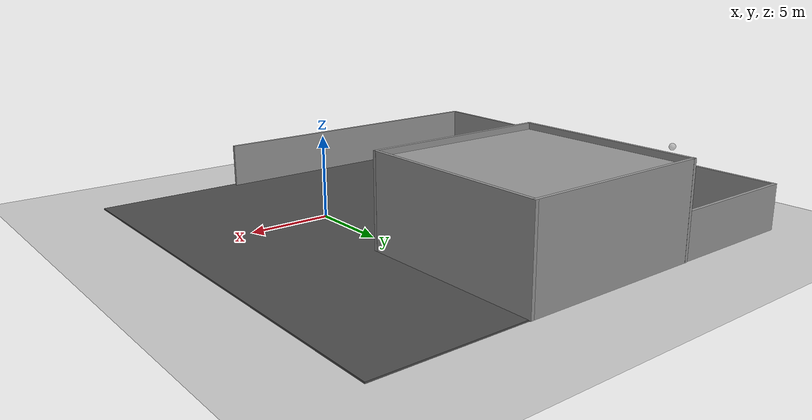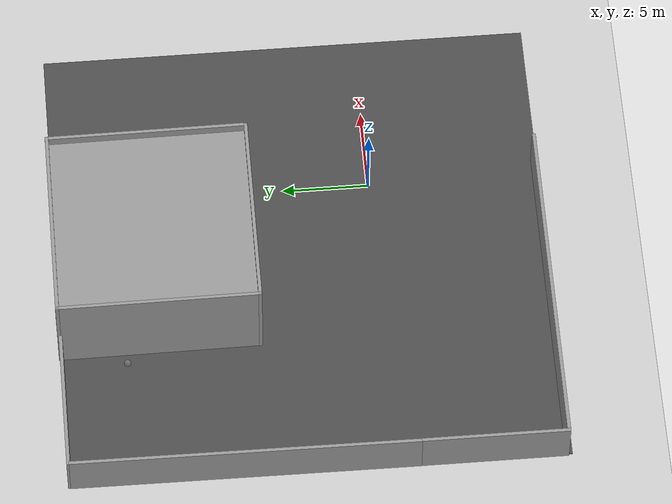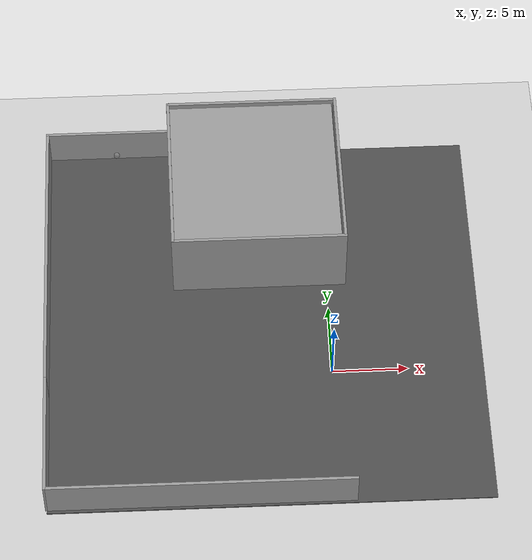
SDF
<sdf version="1.6">
 <world name="default">
  <light name="sun" type="directional">
   <pose>0 0 10 0 -0 0</pose>
   <diffuse>0.8 0.8 0.8 1</diffuse>
   <specular>0.2 0.2 0.2 1</specular>
   <attenuation>
    <range>1000</range>
    <constant>0.9</constant>
    <linear>0.01</linear>
    <quadratic>0.001</quadratic>
   </attenuation>
   <direction>-0.5 0.1 -0.9</direction>
  </light>
  <model name="ground_plane">
   <static>1</static>
   <link name="link">
    <collision name="collision">
     <geometry><plane><normal>0 0 1</normal><size>100 100</size></plane></geometry>
     <surface>
      <contact><collide_bitmask>65535</collide_bitmask></contact>
      <friction><ode><mu>100</mu><mu2>50</mu2></ode></friction>
     </surface>
    </collision>
    <visual name="visual">
     <cast_shadows>0</cast_shadows>
     <geometry><plane><normal>0 0 1</normal><size>100 100</size></plane></geometry>
     <material>
      <script><uri>file://media/materials/scripts/gazebo.material</uri><name>Gazebo/Grey</name></script>
     </material>
    </visual>
   </link>
  </model>
  <gravity>0 0 -9.8</gravity>
  <magnetic_field>6e-06 2.3e-05 -4.2e-05</magnetic_field>
  <atmosphere type="adiabatic"/>
  <physics name="default_physics" default="0" type="ode">
   <max_step_size>0.001</max_step_size>
   <real_time_factor>1</real_time_factor>
   <real_time_update_rate>1000</real_time_update_rate>
  </physics>
  <scene><ambient>0.4 0.4 0.4 1</ambient><background>0.7 0.7 0.7 1</background><shadows>1</shadows></scene>
  <audio><device>default</device></audio>
  <spherical_coordinates>
   <surface_model>EARTH_WGS84</surface_model>
   <latitude_deg>0</latitude_deg>
   <longitude_deg>0</longitude_deg>
   <elevation>0</elevation>
   <heading_deg>0</heading_deg>
  </spherical_coordinates>
  <model name="asphalt_plane">
   <static>1</static>
   <link name="link">
    <collision name="collision"><geometry><box><size>28.8906 28.485 0.1</size></box></geometry></collision>
    <visual name="visual">
     <cast_shadows>0</cast_shadows>
     <geometry><box><size>28.8906 28.485 0.1</size></box></geometry>
     <material>
      <script>
       <uri>model://asphalt_plane/materials/scripts</uri>
       <uri>model://asphalt_plane/materials/textures</uri>
       <name>vrc/asphalt</name>
      </script>
     </material>
    </visual>
   </link>
   <pose>-4.40051 4.22638 0 0 -0 0</pose>
  </model>
  <model name="office_simple">
   <link name="link">
    <pose>-1.95575 1.34148 3.39662 0 -0 0</pose>
    <inertial>
     <inertia><ixx>nan</ixx><ixy>0</ixy><ixz>0</ixz><iyy>nan</iyy><iyz>0</iyz><izz>nan</izz></inertia>
     <mass>0</mass>
    </inertial>
    <visual name="visual">
     <cast_shadows>0</cast_shadows>
     <geometry><box><size>11.6509 0.2 5.63018</size></box></geometry>
     <material>
      <script>
       <uri>model://grey_wall/materials/scripts</uri>
       <uri>model://grey_wall/materials/textures</uri>
       <name>vrc/grey_wall</name>
      </script>
     </material>
    </visual>
    <collision name="collision">
     <geometry><box><size>11.6509 0.2 5.63018</size></box></geometry>
     <surface>
      <friction>
       <ode><mu>1</mu><mu2>1</mu2><fdir1>0 0 0</fdir1><slip1>0</slip1><slip2>0</slip2></ode>
       <torsional>
        <coefficient>1</coefficient>
        <patch_radius>0</patch_radius>
        <surface_radius>0</surface_radius>
        <use_patch_radius>1</use_patch_radius>
        <ode><slip>0</slip></ode>
       </torsional>
      </friction>
      <bounce><restitution_coefficient>0</restitution_coefficient><threshold>1e+06</threshold></bounce>
      <contact>
       <collide_without_contact>0</collide_without_contact>
       <collide_without_contact_bitmask>1</collide_without_contact_bitmask>
       <collide_bitmask>1</collide_bitmask>
       <ode>
        <soft_cfm>0</soft_cfm>
        <soft_erp>0.2</soft_erp>
        <kp>1e+13</kp>
        <kd>1</kd>
        <max_vel>0.01</max_vel>
        <min_depth>0</min_depth>
       </ode>
       <bullet>
        <split_impulse>1</split_impulse>
        <split_impulse_penetration_threshold>-0.01</split_impulse_penetration_threshold>
        <soft_cfm>0</soft_cfm>
        <soft_erp>0.2</soft_erp>
        <kp>1e+13</kp>
        <kd>1</kd>
       </bullet>
      </contact>
     </surface>
    </collision>
   </link>
   <link name="link_clone_0">
    <pose>3.71982 7.10283 3.39662 0 0 -1.56276</pose>
    <inertial>
     <inertia><ixx>nan</ixx><ixy>0</ixy><ixz>0</ixz><iyy>nan</iyy><iyz>0</iyz><izz>nan</izz></inertia>
     <mass>0</mass>
    </inertial>
    <visual name="visual">
     <cast_shadows>0</cast_shadows>
     <geometry><box><size>11.6509 0.2 5.63018</size></box></geometry>
     <material>
      <script>
       <uri>model://grey_wall/materials/scripts</uri>
       <uri>model://grey_wall/materials/textures</uri>
       <name>vrc/grey_wall</name>
      </script>
      <shader type="pixel"/>
     </material>
    </visual>
    <collision name="collision">
     <geometry><box><size>11.6509 0.2 5.63018</size></box></geometry>
     <surface>
      <friction>
       <ode><mu>1</mu><mu2>1</mu2><fdir1>0 0 0</fdir1><slip1>0</slip1><slip2>0</slip2></ode>
       <torsional>
        <coefficient>1</coefficient>
        <patch_radius>0</patch_radius>
        <surface_radius>0</surface_radius>
        <use_patch_radius>1</use_patch_radius>
        <ode><slip>0</slip></ode>
       </torsional>
      </friction>
      <bounce><restitution_coefficient>0</restitution_coefficient><threshold>1e+06</threshold></bounce>
      <contact>
       <collide_without_contact>0</collide_without_contact>
       <collide_without_contact_bitmask>1</collide_without_contact_bitmask>
       <collide_bitmask>1</collide_bitmask>
       <ode>
        <soft_cfm>0</soft_cfm>
        <soft_erp>0.2</soft_erp>
        <kp>1e+13</kp>
        <kd>1</kd>
        <max_vel>0.01</max_vel>
        <min_depth>0</min_depth>
       </ode>
       <bullet>
        <split_impulse>1</split_impulse>
        <split_impulse_penetration_threshold>-0.01</split_impulse_penetration_threshold>
        <soft_cfm>0</soft_cfm>
        <soft_erp>0.2</soft_erp>
        <kp>1e+13</kp>
        <kd>1</kd>
       </bullet>
      </contact>
     </surface>
    </collision>
   </link>
   <link name="link_clone_0_clone">
    <pose>-7.7194 7.10341 3.39662 0 0 -1.56276</pose>
    <inertial>
     <inertia><ixx>nan</ixx><ixy>0</ixy><ixz>0</ixz><iyy>nan</iyy><iyz>0</iyz><izz>nan</izz></inertia>
     <mass>0</mass>
    </inertial>
    <visual name="visual">
     <cast_shadows>0</cast_shadows>
     <geometry><box><size>11.6509 0.2 5.63018</size></box></geometry>
     <material>
      <script>
       <uri>model://grey_wall/materials/scripts</uri>
       <uri>model://grey_wall/materials/textures</uri>
       <name>vrc/grey_wall</name>
      </script>
      <shader type="pixel"/>
     </material>
    </visual>
    <collision name="collision">
     <geometry><box><size>11.6509 0.2 5.63018</size></box></geometry>
     <surface>
      <friction>
       <ode><mu>1</mu><mu2>1</mu2><fdir1>0 0 0</fdir1><slip1>0</slip1><slip2>0</slip2></ode>
       <torsional>
        <coefficient>1</coefficient>
        <patch_radius>0</patch_radius>
        <surface_radius>0</surface_radius>
        <use_patch_radius>1</use_patch_radius>
        <ode><slip>0</slip></ode>
       </torsional>
      </friction>
      <bounce><restitution_coefficient>0</restitution_coefficient><threshold>1e+06</threshold></bounce>
      <contact>
       <collide_without_contact>0</collide_without_contact>
       <collide_without_contact_bitmask>1</collide_without_contact_bitmask>
       <collide_bitmask>1</collide_bitmask>
       <ode>
        <soft_cfm>0</soft_cfm>
        <soft_erp>0.2</soft_erp>
        <kp>1e+13</kp>
        <kd>1</kd>
        <max_vel>0.01</max_vel>
        <min_depth>0</min_depth>
       </ode>
       <bullet>
        <split_impulse>1</split_impulse>
        <split_impulse_penetration_threshold>-0.01</split_impulse_penetration_threshold>
        <soft_cfm>0</soft_cfm>
        <soft_erp>0.2</soft_erp>
        <kp>1e+13</kp>
        <kd>1</kd>
       </bullet>
      </contact>
     </surface>
    </collision>
   </link>
   <link name="link_clone_0_clone_0">
    <pose>-2.09862 7.04327 5.73647 1.5726 -0 -1.56276</pose>
    <inertial>
     <inertia><ixx>nan</ixx><ixy>0</ixy><ixz>0</ixz><iyy>nan</iyy><iyz>0</iyz><izz>nan</izz></inertia>
     <mass>0</mass>
    </inertial>
    <visual name="visual">
     <cast_shadows>0</cast_shadows>
     <geometry><box><size>11.4489 0.212066 11.2025</size></box></geometry>
     <material>
      <script>
       <uri>model://grey_wall/materials/scripts</uri>
       <uri>model://grey_wall/materials/textures</uri>
       <name>vrc/grey_wall</name>
      </script>
      <shader type="pixel"/>
     </material>
    </visual>
    <collision name="collision">
     <geometry><box><size>11.4489 0.212066 11.2025</size></box></geometry>
     <surface>
      <friction>
       <ode><mu>1</mu><mu2>1</mu2><fdir1>0 0 0</fdir1><slip1>0</slip1><slip2>0</slip2></ode>
       <torsional>
        <coefficient>1</coefficient>
        <patch_radius>0</patch_radius>
        <surface_radius>0</surface_radius>
        <use_patch_radius>1</use_patch_radius>
        <ode><slip>0</slip></ode>
       </torsional>
      </friction>
      <bounce><restitution_coefficient>0</restitution_coefficient><threshold>1e+06</threshold></bounce>
      <contact>
       <collide_without_contact>0</collide_without_contact>
       <collide_without_contact_bitmask>1</collide_without_contact_bitmask>
       <collide_bitmask>1</collide_bitmask>
       <ode>
        <soft_cfm>0</soft_cfm>
        <soft_erp>0.2</soft_erp>
        <kp>1e+13</kp>
        <kd>1</kd>
        <max_vel>0.01</max_vel>
        <min_depth>0</min_depth>
       </ode>
       <bullet>
        <split_impulse>1</split_impulse>
        <split_impulse_penetration_threshold>-0.01</split_impulse_penetration_threshold>
        <soft_cfm>0</soft_cfm>
        <soft_erp>0.2</soft_erp>
        <kp>1e+13</kp>
        <kd>1</kd>
       </bullet>
      </contact>
     </surface>
    </collision>
   </link>
   <link name="link_clone_1">
    <pose>-2.05377 12.8226 3.39662 0 -0 0</pose>
    <inertial>
     <inertia><ixx>nan</ixx><ixy>0</ixy><ixz>0</ixz><iyy>nan</iyy><iyz>0</iyz><izz>nan</izz></inertia>
     <mass>0</mass>
    </inertial>
    <visual name="visual">
     <cast_shadows>0</cast_shadows>
     <geometry><box><size>11.6509 0.2 5.63018</size></box></geometry>
     <material>
      <script>
       <uri>model://grey_wall/materials/scripts</uri>
       <uri>model://grey_wall/materials/textures</uri>
       <name>vrc/grey_wall</name>
      </script>
      <shader type="pixel"/>
     </material>
    </visual>
    <collision name="collision">
     <geometry><box><size>11.6509 0.2 5.63018</size></box></geometry>
     <surface>
      <friction>
       <ode><mu>1</mu><mu2>1</mu2><fdir1>0 0 0</fdir1><slip1>0</slip1><slip2>0</slip2></ode>
       <torsional>
        <coefficient>1</coefficient>
        <patch_radius>0</patch_radius>
        <surface_radius>0</surface_radius>
        <use_patch_radius>1</use_patch_radius>
        <ode><slip>0</slip></ode>
       </torsional>
      </friction>
      <bounce><restitution_coefficient>0</restitution_coefficient><threshold>1e+06</threshold></bounce>
      <contact>
       <collide_without_contact>0</collide_without_contact>
       <collide_without_contact_bitmask>1</collide_without_contact_bitmask>
       <collide_bitmask>1</collide_bitmask>
       <ode>
        <soft_cfm>0</soft_cfm>
        <soft_erp>0.2</soft_erp>
        <kp>1e+13</kp>
        <kd>1</kd>
        <max_vel>0.01</max_vel>
        <min_depth>0</min_depth>
       </ode>
       <bullet>
        <split_impulse>1</split_impulse>
        <split_impulse_penetration_threshold>-0.01</split_impulse_penetration_threshold>
        <soft_cfm>0</soft_cfm>
        <soft_erp>0.2</soft_erp>
        <kp>1e+13</kp>
        <kd>1</kd>
       </bullet>
      </contact>
     </surface>
    </collision>
   </link>
   <static>1</static>
   <pose>-2.59571 5.68871 -0.55899 0 -0 0</pose>
  </model>
  <model name="L-wall">
   <link name="link">
    <pose>0.459536 0.004219 1.4 0 -0 0</pose>
    <inertial>
     <inertia><ixx>nan</ixx><ixy>0</ixy><ixz>0</ixz><iyy>nan</iyy><iyz>0</iyz><izz>nan</izz></inertia>
     <mass>0</mass>
    </inertial>
    <visual name="visual">
     <cast_shadows>0</cast_shadows>
     <geometry><box><size>8.40378 0.2 2.8</size></box></geometry>
     <material>
      <script>
       <uri>model://grey_wall/materials/scripts</uri>
       <uri>model://grey_wall/materials/textures</uri>
       <name>vrc/grey_wall</name>
      </script>
     </material>
    </visual>
    <collision name="collision">
     <geometry><box><size>8.40378 0.2 2.8</size></box></geometry>
     <surface>
      <friction>
       <ode><mu>1</mu><mu2>1</mu2><fdir1>0 0 0</fdir1><slip1>0</slip1><slip2>0</slip2></ode>
       <torsional>
        <coefficient>1</coefficient>
        <patch_radius>0</patch_radius>
        <surface_radius>0</surface_radius>
        <use_patch_radius>1</use_patch_radius>
        <ode><slip>0</slip></ode>
       </torsional>
      </friction>
      <bounce><restitution_coefficient>0</restitution_coefficient><threshold>1e+06</threshold></bounce>
      <contact>
       <collide_without_contact>0</collide_without_contact>
       <collide_without_contact_bitmask>1</collide_without_contact_bitmask>
       <collide_bitmask>1</collide_bitmask>
       <ode>
        <soft_cfm>0</soft_cfm>
        <soft_erp>0.2</soft_erp>
        <kp>1e+13</kp>
        <kd>1</kd>
        <max_vel>0.01</max_vel>
        <min_depth>0</min_depth>
       </ode>
       <bullet>
        <split_impulse>1</split_impulse>
        <split_impulse_penetration_threshold>-0.01</split_impulse_penetration_threshold>
        <soft_cfm>0</soft_cfm>
        <soft_erp>0.2</soft_erp>
        <kp>1e+13</kp>
        <kd>1</kd>
       </bullet>
      </contact>
     </surface>
    </collision>
   </link>
   <link name="link_clone">
    <pose>-3.68857 -9.95622 1.4 0 0 -1.5747</pose>
    <inertial>
     <inertia><ixx>nan</ixx><ixy>0</ixy><ixz>0</ixz><iyy>nan</iyy><iyz>0</iyz><izz>nan</izz></inertia>
     <mass>0</mass>
    </inertial>
    <visual name="visual">
     <cast_shadows>0</cast_shadows>
     <geometry><box><size>19.8548 0.2 2.8</size></box></geometry>
     <material>
      <script>
       <uri>model://grey_wall/materials/scripts</uri>
       <uri>model://grey_wall/materials/textures</uri>
       <name>vrc/grey_wall</name>
      </script>
      <shader type="pixel"/>
     </material>
    </visual>
    <collision name="collision">
     <geometry><box><size>19.8548 0.2 2.8</size></box></geometry>
     <surface>
      <friction>
       <ode><mu>1</mu><mu2>1</mu2><fdir1>0 0 0</fdir1><slip1>0</slip1><slip2>0</slip2></ode>
       <torsional>
        <coefficient>1</coefficient>
        <patch_radius>0</patch_radius>
        <surface_radius>0</surface_radius>
        <use_patch_radius>1</use_patch_radius>
        <ode><slip>0</slip></ode>
       </torsional>
      </friction>
      <bounce><restitution_coefficient>0</restitution_coefficient><threshold>1e+06</threshold></bounce>
      <contact>
       <collide_without_contact>0</collide_without_contact>
       <collide_without_contact_bitmask>1</collide_without_contact_bitmask>
       <collide_bitmask>1</collide_bitmask>
       <ode>
        <soft_cfm>0</soft_cfm>
        <soft_erp>0.2</soft_erp>
        <kp>1e+13</kp>
        <kd>1</kd>
        <max_vel>0.01</max_vel>
        <min_depth>0</min_depth>
       </ode>
       <bullet>
        <split_impulse>1</split_impulse>
        <split_impulse_penetration_threshold>-0.01</split_impulse_penetration_threshold>
        <soft_cfm>0</soft_cfm>
        <soft_erp>0.2</soft_erp>
        <kp>1e+13</kp>
        <kd>1</kd>
       </bullet>
      </contact>
     </surface>
    </collision>
   </link>
   <static>1</static>
   <pose>-15.1313 18.4422 0 0 -0 0</pose>
  </model>
  <model name="gzsitl_perm_targ_ctrl">
   <link name="link">
    <inertial>
     <mass>0.12017</mass>
     <inertia>
      <ixx>0.00292634</ixx>
      <ixy>0</ixy>
      <ixz>0</ixz>
      <iyy>0.00292634</iyy>
      <iyz>0</iyz>
      <izz>0.00292634</izz>
     </inertia>
    </inertial>
    <visual name="visual">
     <geometry><sphere><radius>0.2</radius></sphere></geometry>
     <material>
      <lighting>1</lighting>
      <script><uri>file://media/materials/scripts/gazebo.material</uri><name>Gazebo/Grey</name></script>
      <ambient>0.3 0.3 0.3 1</ambient>
      <diffuse>0.7 0.7 0.7 1</diffuse>
      <specular>0.01 0.01 0.01 1</specular>
      <emissive>0 0 0 1</emissive>
      <shader type="pixel"><normal_map>__default__</normal_map></shader>
     </material>
     <transparency>0.5</transparency>
     <plugin name="gzsitl_visflags_plugin" filename="libgzsitl_visflags_plugin.so">
      <gz_visibility_all>false</gz_visibility_all>
      <gz_visibility_gui>true</gz_visibility_gui>
      <gz_visibility_sel>true</gz_visibility_sel>
     </plugin>
    </visual>
   </link>
   <static>1</static>
   <pose>-13.9053 14.7552 5.02522 0 -0 0</pose>
  </model>
  <model name="L-wall_clone">
   <link name="link">
    <pose>0.459536 0.004219 1.4 0 -0 0</pose>
    <inertial>
     <inertia><ixx>nan</ixx><ixy>0</ixy><ixz>0</ixz><iyy>nan</iyy><iyz>0</iyz><izz>nan</izz></inertia>
     <mass>0</mass>
    </inertial>
    <visual name="visual">
     <cast_shadows>0</cast_shadows>
     <geometry><box><size>8.40378 0.2 2.8</size></box></geometry>
     <material>
      <script>
       <uri>model://grey_wall/materials/scripts</uri>
       <uri>model://grey_wall/materials/textures</uri>
       <name>vrc/grey_wall</name>
      </script>
     </material>
    </visual>
    <collision name="collision">
     <geometry><box><size>8.40378 0.2 2.8</size></box></geometry>
     <surface>
      <friction>
       <ode><mu>1</mu><mu2>1</mu2><fdir1>0 0 0</fdir1><slip1>0</slip1><slip2>0</slip2></ode>
       <torsional>
        <coefficient>1</coefficient>
        <patch_radius>0</patch_radius>
        <surface_radius>0</surface_radius>
        <use_patch_radius>1</use_patch_radius>
        <ode><slip>0</slip></ode>
       </torsional>
      </friction>
      <bounce><restitution_coefficient>0</restitution_coefficient><threshold>1e+06</threshold></bounce>
      <contact>
       <collide_without_contact>0</collide_without_contact>
       <collide_without_contact_bitmask>1</collide_without_contact_bitmask>
       <collide_bitmask>1</collide_bitmask>
       <ode>
        <soft_cfm>0</soft_cfm>
        <soft_erp>0.2</soft_erp>
        <kp>1e+13</kp>
        <kd>1</kd>
        <max_vel>0.01</max_vel>
        <min_depth>0</min_depth>
       </ode>
       <bullet>
        <split_impulse>1</split_impulse>
        <split_impulse_penetration_threshold>-0.01</split_impulse_penetration_threshold>
        <soft_cfm>0</soft_cfm>
        <soft_erp>0.2</soft_erp>
        <kp>1e+13</kp>
        <kd>1</kd>
       </bullet>
      </contact>
     </surface>
    </collision>
   </link>
   <link name="link_clone">
    <pose>-3.68857 -9.95622 1.4 0 0 -1.5747</pose>
    <inertial>
     <inertia><ixx>nan</ixx><ixy>0</ixy><ixz>0</ixz><iyy>nan</iyy><iyz>0</iyz><izz>nan</izz></inertia>
     <mass>0</mass>
    </inertial>
    <visual name="visual">
     <cast_shadows>0</cast_shadows>
     <geometry><box><size>19.8548 0.2 2.8</size></box></geometry>
     <material>
      <script>
       <uri>model://grey_wall/materials/scripts</uri>
       <uri>model://grey_wall/materials/textures</uri>
       <name>vrc/grey_wall</name>
      </script>
      <shader type="pixel"/>
     </material>
    </visual>
    <collision name="collision">
     <geometry><box><size>19.8548 0.2 2.8</size></box></geometry>
     <surface>
      <friction>
       <ode><mu>1</mu><mu2>1</mu2><fdir1>0 0 0</fdir1><slip1>0</slip1><slip2>0</slip2></ode>
       <torsional>
        <coefficient>1</coefficient>
        <patch_radius>0</patch_radius>
        <surface_radius>0</surface_radius>
        <use_patch_radius>1</use_patch_radius>
        <ode><slip>0</slip></ode>
       </torsional>
      </friction>
      <bounce><restitution_coefficient>0</restitution_coefficient><threshold>1e+06</threshold></bounce>
      <contact>
       <collide_without_contact>0</collide_without_contact>
       <collide_without_contact_bitmask>1</collide_without_contact_bitmask>
       <collide_bitmask>1</collide_bitmask>
       <ode>
        <soft_cfm>0</soft_cfm>
        <soft_erp>0.2</soft_erp>
        <kp>1e+13</kp>
        <kd>1</kd>
        <max_vel>0.01</max_vel>
        <min_depth>0</min_depth>
       </ode>
       <bullet>
        <split_impulse>1</split_impulse>
        <split_impulse_penetration_threshold>-0.01</split_impulse_penetration_threshold>
        <soft_cfm>0</soft_cfm>
        <soft_erp>0.2</soft_erp>
        <kp>1e+13</kp>
        <kd>1</kd>
       </bullet>
      </contact>
     </surface>
    </collision>
   </link>
   <static>1</static>
   <pose>-18.8404 -6.06023 0 0 -0 1.57204</pose>
  </model>
 </world>
</sdf>
